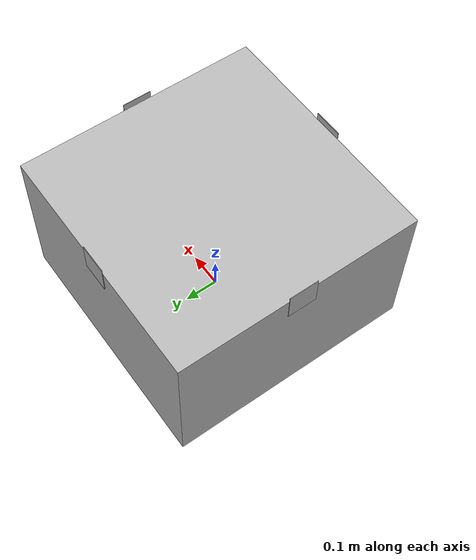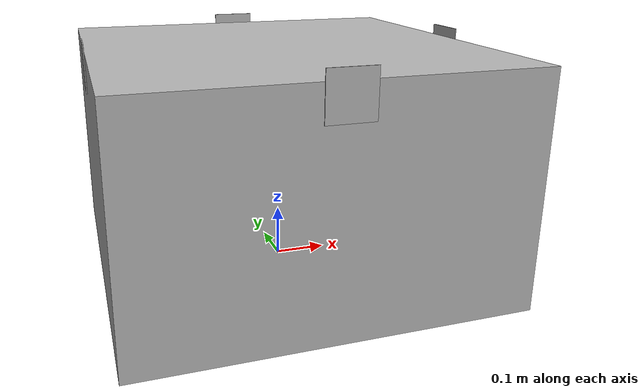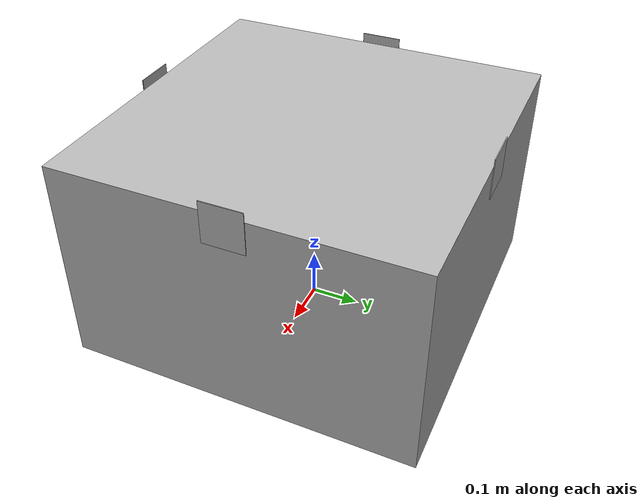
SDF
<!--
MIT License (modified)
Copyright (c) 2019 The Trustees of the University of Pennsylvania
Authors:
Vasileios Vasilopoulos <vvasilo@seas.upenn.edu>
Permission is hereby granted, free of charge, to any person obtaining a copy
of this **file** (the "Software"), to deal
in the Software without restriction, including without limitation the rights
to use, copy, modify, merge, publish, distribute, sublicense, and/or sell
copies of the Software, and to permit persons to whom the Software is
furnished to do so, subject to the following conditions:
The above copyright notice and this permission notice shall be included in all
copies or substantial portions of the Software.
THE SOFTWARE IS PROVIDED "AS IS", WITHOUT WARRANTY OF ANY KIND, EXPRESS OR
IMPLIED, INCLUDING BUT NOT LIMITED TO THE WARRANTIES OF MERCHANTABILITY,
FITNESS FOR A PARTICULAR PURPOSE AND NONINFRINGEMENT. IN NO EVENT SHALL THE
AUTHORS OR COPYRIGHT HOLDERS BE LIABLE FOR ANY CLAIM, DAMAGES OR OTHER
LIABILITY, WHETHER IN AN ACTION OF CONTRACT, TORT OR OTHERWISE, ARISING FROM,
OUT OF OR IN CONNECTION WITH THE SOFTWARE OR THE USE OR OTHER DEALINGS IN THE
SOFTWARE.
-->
<?xml version='1.0'?>

<sdf version='1.6'>
  <model name='box_tall'>
    <link name='box'>
      <pose frame=''>0 0 0 0 -0 0</pose>
      <inertial>
        <mass>1000</mass>
        <inertia>
          <ixx>4.78</ixx>
          <ixy>0</ixy>
          <ixz>0</ixz>
          <iyy>6.26</iyy>
          <iyz>0</iyz>
          <izz>8.235</izz>
        </inertia>
        <pose frame=''>0 0 0.22 0 -0 0</pose>
      </inertial>
      <gravity>1</gravity>
      <self_collide>0</self_collide>
      <kinematic>0</kinematic>

      <visual name='box_visual'>
        <pose frame=''>0 0 0.22 0 -0 0</pose>
        <geometry>
          <box>
            <size>0.72 0.72 0.44</size>
          </box>
        </geometry>
        <material>
          <script>
            <uri>model://box_tall/materials/scripts</uri>
            <uri>model://box_tall/materials/textures</uri>
            <name>box_tall</name>
          </script>
        </material>
        <cast_shadows>1</cast_shadows>
        <transparency>0</transparency>
      </visual>
      <collision name='box_collision'>
        <pose frame=''>0 0 0.22 0 -0 0</pose>
        <geometry>
          <box>
            <size>0.72 0.72 0.44</size>
          </box>
        </geometry>
        <surface>
          <friction>
            <ode>
              <mu>100</mu>
              <mu2>50</mu2>
            </ode>
          </friction>
        </surface>
      </collision>
    </link>

    <include>
      <name>tag_length_front</name>
      <uri>model://tag36_11_00007</uri>
      <pose>0 0.362 0.375 0 0 1.57</pose>
      <static>false</static>
    </include>
    <joint name="tag_length_front_joint" type="fixed">
      <child>tag_length_front::link</child>
      <parent>box</parent>
    </joint>

    <include>
      <name>tag_length_back</name>
      <uri>model://tag36_11_00007</uri>
      <pose>0 -0.362 0.375 0 0 -1.57</pose>
      <static>false</static>
    </include>
    <joint name="tag_length_back_joint" type="fixed">
      <child>tag_length_back::link</child>
      <parent>box</parent>
    </joint>

    <include>
      <name>tag_width_right</name>
      <uri>model://tag36_11_00007</uri>
      <pose>0.362 0 0.375 0 0 0</pose>
      <static>false</static>
    </include>
    <joint name="tag_width_right_joint" type="fixed">
      <child>tag_width_right::link</child>
      <parent>box</parent>
    </joint>

    <include>
      <name>tag_width_left</name>
      <uri>model://tag36_11_00007</uri>
      <pose>-0.362 0 0.375 0 0 3.14</pose>
      <static>false</static>
    </include>
    <joint name="tag_width_left_joint" type="fixed">
      <child>tag_width_left::link</child>
      <parent>box</parent>
    </joint>

    <static>1</static>
    <allow_auto_disable>1</allow_auto_disable>
  </model>
</sdf>

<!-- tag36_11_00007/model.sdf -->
<sdf version="1.6">
  <model name="tag36_11_00007">
    <static>true</static>
    <link name="link">
      <visual name="visual">
        <geometry>
          <mesh>
            <uri>model://tag36_11_00007/meshes/tag36_11_00007.dae</uri>
          <scale>0.17 0.17 0.17</scale></mesh>
        </geometry>
      </visual>
    </link>
  </model>
</sdf>
